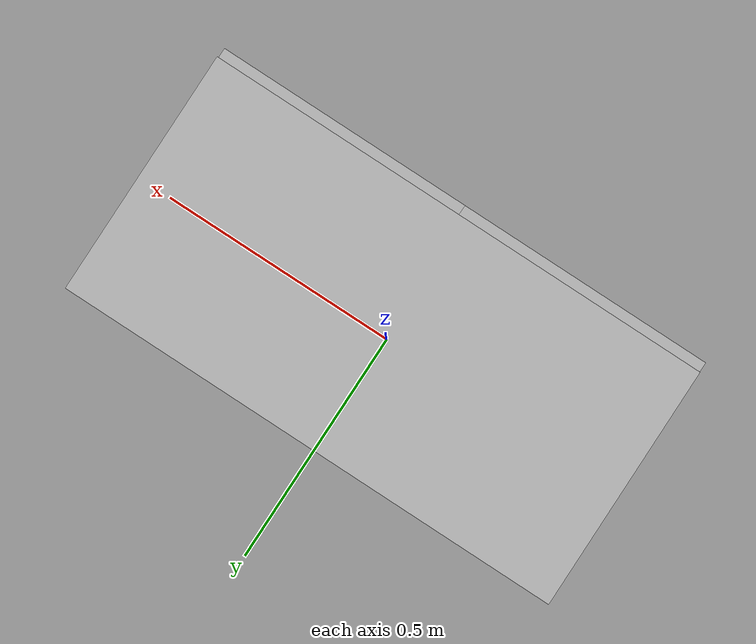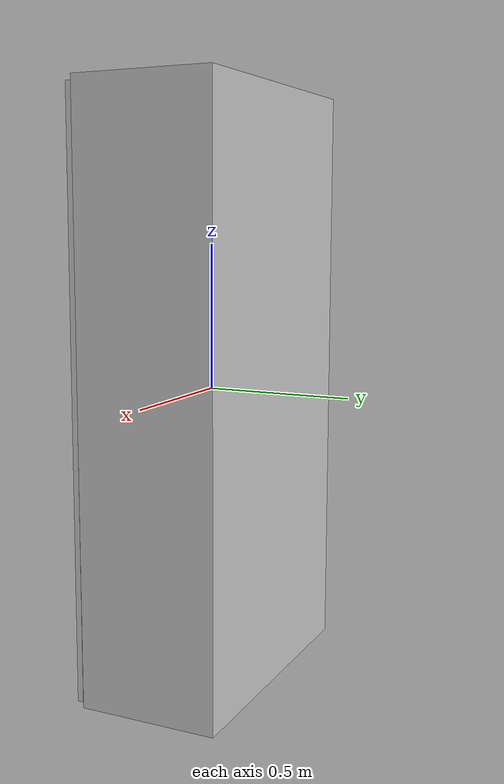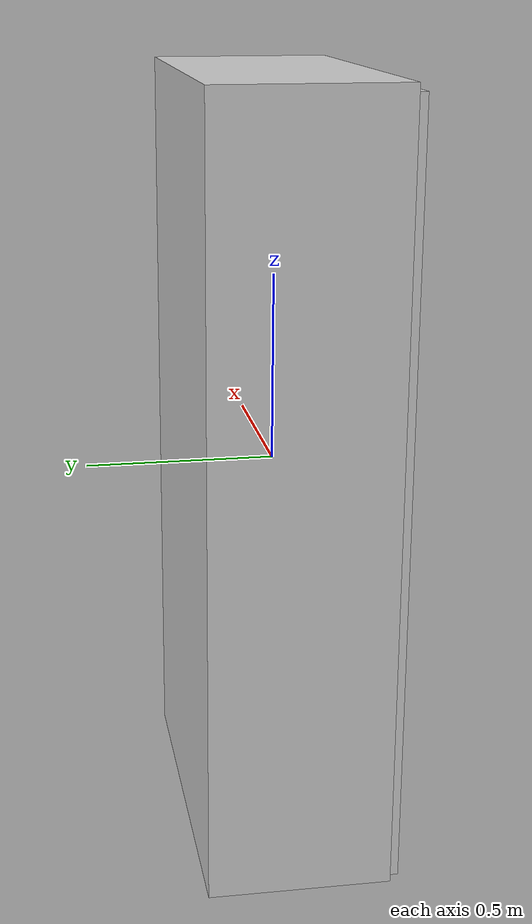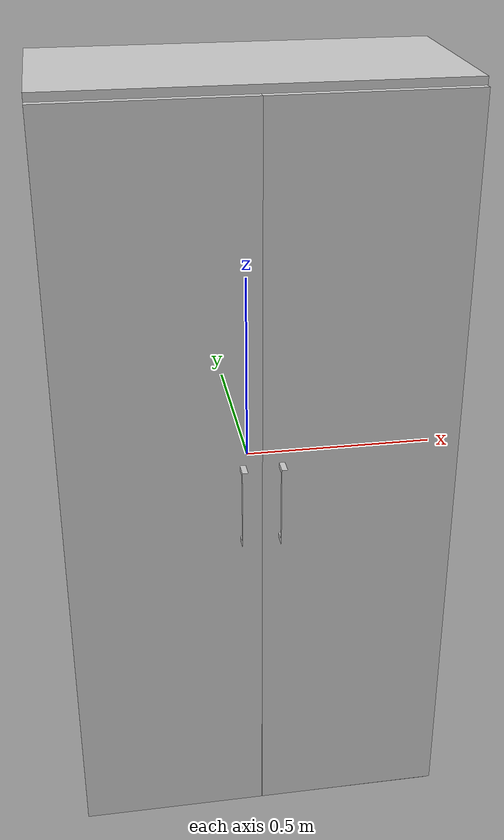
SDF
<?xml version='1.0'?>
<sdf version='1.7'>
  <model name='Wardrobe'>
    <link name='wardrobe'>
      <inertial>
        <mass>30.0</mass>
        <inertia>
          <ixx>10.625</ixx>
          <ixy>0</ixy>
          <ixz>0</ixz>
          <iyy>12.5</iyy>
          <iyz>0</iyz>
          <izz>3.125</izz>
        </inertia>
        <pose>0 0 0 0 0 0</pose>
      </inertial>
      <self_collide>0</self_collide>
      <enable_wind>0</enable_wind>
      <kinematic>0</kinematic>
      <pose>0 0 0 0 0 0</pose>
      <visual name='visual_wardrobe'>
        <geometry>
          <mesh>
            <uri>model://Wardrobe/meshes/Wardrobe.dae</uri>
          </mesh>
        </geometry>
        <material>
          <name>Gazebo/DarkGrey </name>
            <uri>file://media/materials/scripts/gazebo.material</uri>
          </material>
      </visual>
      <collision name='collision_wardrobe'>
        <laser_retro>0</laser_retro>
        <max_contacts>10</max_contacts>
        <pose>0 0 0 0 0 0</pose>
        <geometry>
          <mesh>
            <uri>model://Wardrobe/meshes/Wardrobe.dae</uri>
          </mesh>
        </geometry>
        <surface>
          <friction>
            <ode>
              <mu>0.85</mu>
              <mu2>0.85</mu2>
            </ode>
          </friction>
        </surface>
      </collision>
    </link>

    <link name='door1'>
      <inertial>
        <mass>1.0</mass>
        <inertia>
          <ixx>0.354166665</ixx>
          <ixy>0</ixy>
          <ixz>0</ixz>
          <iyy>0.416666665</iyy>
          <iyz>0</iyz>
          <izz>0.104166666</izz>
        </inertia>
        <pose>0 0 0 0 0 0</pose>
      </inertial>
      <self_collide>0</self_collide>
      <enable_wind>0</enable_wind>
      <kinematic>0</kinematic>
      <pose>0 0.0 0.0 0 0 0</pose>
      <visual name='visual_door1'>
        <geometry>
          <mesh>
            <uri>model://Wardrobe/meshes/Door.dae</uri>
          </mesh>
        </geometry>
        <material>
          <name>Gazebo/Grey </name>
            <uri>file://media/materials/scripts/gazebo.material</uri>
          </material>
      </visual>
      <collision name='collision_door1'>
        <laser_retro>0</laser_retro>
        <max_contacts>10</max_contacts>
        <pose>0 0 0 0 0 0</pose>
        <geometry>
          <mesh>
            <uri>model://Wardrobe/meshes/Door.dae</uri>
          </mesh>
        </geometry>
        <surface>
          <friction>
            <ode>
              <mu>0.95</mu>
              <mu2>0.95</mu2>
            </ode>
          </friction>
        </surface>
      </collision>
    </link>

    <link name='door2'>
      <inertial>
        <mass>1.0</mass>
        <inertia>
          <ixx>0.354166665</ixx>
          <ixy>0</ixy>
          <ixz>0</ixz>
          <iyy>0.416666665</iyy>
          <iyz>0</iyz>
          <izz>0.104166666</izz>
        </inertia>
        <pose>0 0 0 0 0 0</pose>
      </inertial>
      <self_collide>0</self_collide>
      <enable_wind>0</enable_wind>
      <kinematic>0</kinematic>
      <pose>0 0.0 0.0 0 3.14 0</pose>
      <visual name='visual_door2'>
        <geometry>
          <mesh>
            <uri>model://Wardrobe/meshes/Door.dae</uri>
          </mesh>
        </geometry>
        <material>
          <name>Gazebo/Grey </name>
            <uri>file://media/materials/scripts/gazebo.material</uri>
          </material>
      </visual>
      <collision name='collision_door2'>
        <laser_retro>0</laser_retro>
        <max_contacts>10</max_contacts>
        <pose>0 0 0 0 0 0</pose>
        <geometry>
          <mesh>
            <uri>model://Wardrobe/meshes/Door.dae</uri>
          </mesh>
        </geometry>
        <surface>
          <friction>
            <ode>
              <mu>0.95</mu>
              <mu2>0.95</mu2>
            </ode>
          </friction>
        </surface>
      </collision>
    </link>

    <joint name="jnt_1" type="revolute">
        <parent> wardrobe </parent>
        <child> door1 </child>
        <pose> -0.50 -0.250 0.0 0.0 0.0 0.0 </pose>
        <axis>
            <xyz> 0 0 1</xyz>
            <limit>
                <lower> -1.57 </lower>
                <upper> 0.0 </upper>
            </limit>
            <dynamics>
                <friction> 1.0 </friction>
            </dynamics>
        </axis>
    </joint>

    <joint name="jnt_2" type="revolute">
        <parent> wardrobe </parent>
        <child> door2 </child>
        <pose> -0.50 -0.25 0.0 0.0 0.0 0.0 </pose>
        <axis>
            <xyz> 0 0 1</xyz>
            <limit>
                <lower> -1.57 </lower>
                <upper> 0.0 </upper>
            </limit>
            <dynamics>
                <friction> 1.0 </friction>
            </dynamics>
        </axis>
    </joint>

  </model>
</sdf>
